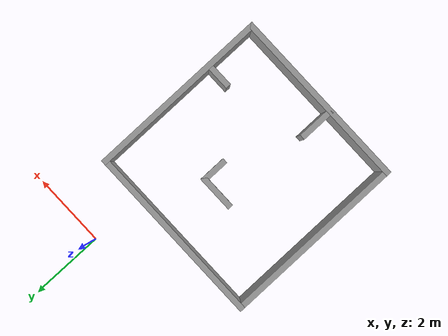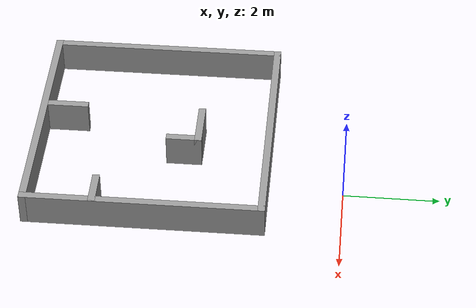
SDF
<?xml version='1.0'?>
<sdf version='1.7'>
  <model name='hexa_yard'>
    <pose>-1.223 -3.268 0 0 -0 0</pose>
    <link name='Wall_10'>
      <collision name='Wall_10_Collision'>
        <geometry>
          <box>
            <size>1 0.15 0.7</size>
          </box>
        </geometry>
        <pose>0 0 0.35 0 -0 0</pose>
      </collision>
      <visual name='Wall_10_Visual'>
        <pose>0 0 0.35 0 -0 0</pose>
        <geometry>
          <box>
            <size>1 0.15 0.7</size>
          </box>
        </geometry>
        <material>
          <script>
            <uri>file://media/materials/scripts/gazebo.material</uri>
            <name>Gazebo/Grey</name>
          </script>
          <ambient>1 1 1 1</ambient>
        </material>
        <meta>
          <layer>0</layer>
        </meta>
      </visual>
      <pose>0.028 0.187 0 0 -0 3.14159</pose>
    </link>
    <link name='Wall_15'>
      <collision name='Wall_15_Collision'>
        <geometry>
          <box>
            <size>1 0.15 0.7</size>
          </box>
        </geometry>
        <pose>0 0 0.35 0 -0 0</pose>
      </collision>
      <visual name='Wall_15_Visual'>
        <pose>0 0 0.35 0 -0 0</pose>
        <geometry>
          <box>
            <size>1 0.15 0.7</size>
          </box>
        </geometry>
        <material>
          <script>
            <uri>file://media/materials/scripts/gazebo.material</uri>
            <name>Gazebo/Grey</name>
          </script>
          <ambient>1 1 1 1</ambient>
        </material>
        <meta>
          <layer>0</layer>
        </meta>
      </visual>
      <pose>-0.408 -2.753 0 0 -0 1.5708</pose>
    </link>
    <link name='Wall_2'>
      <collision name='Wall_2_Collision'>
        <geometry>
          <box>
            <size>5 0.15 0.7</size>
          </box>
        </geometry>
        <pose>0 0 0.35 0 -0 0</pose>
      </collision>
      <visual name='Wall_2_Visual'>
        <pose>0 0 0.35 0 -0 0</pose>
        <geometry>
          <box>
            <size>5 0.15 0.7</size>
          </box>
        </geometry>
        <material>
          <script>
            <uri>file://media/materials/scripts/gazebo.material</uri>
            <name>Gazebo/Grey</name>
          </script>
          <ambient>1 1 1 1</ambient>
        </material>
        <meta>
          <layer>0</layer>
        </meta>
      </visual>
      <pose>-0 1.657 0 0 -0 0</pose>
    </link>
    <link name='Wall_21'>
      <collision name='Wall_21_Collision'>
        <geometry>
          <box>
            <size>0.75 0.15 0.7</size>
          </box>
        </geometry>
        <pose>0 0 0.35 0 -0 0</pose>
      </collision>
      <visual name='Wall_21_Visual'>
        <pose>0 0 0.35 0 -0 0</pose>
        <geometry>
          <box>
            <size>0.75 0.15 0.7</size>
          </box>
        </geometry>
        <material>
          <script>
            <uri>file://media/materials/scripts/gazebo.material</uri>
            <name>Gazebo/Grey</name>
          </script>
          <ambient>1 1 1 1</ambient>
        </material>
        <meta>
          <layer>0</layer>
        </meta>
      </visual>
      <pose>2.105 -1.779 0 0 -0 3.14159</pose>
    </link>
    <link name='Wall_23'>
      <collision name='Wall_23_Collision'>
        <geometry>
          <box>
            <size>0.75 0.15 0.7</size>
          </box>
        </geometry>
        <pose>0 0 0.35 0 -0 0</pose>
      </collision>
      <visual name='Wall_23_Visual'>
        <pose>0 0 0.35 0 -0 0</pose>
        <geometry>
          <box>
            <size>0.75 0.15 0.7</size>
          </box>
        </geometry>
        <material>
          <script>
            <uri>file://media/materials/scripts/gazebo.material</uri>
            <name>Gazebo/Grey</name>
          </script>
          <ambient>1 1 1 1</ambient>
        </material>
        <meta>
          <layer>0</layer>
        </meta>
      </visual>
      <pose>0.453 -0.113 0 0 -0 -1.5708</pose>
    </link>
    <link name='Wall_3'>
      <collision name='Wall_3_Collision'>
        <geometry>
          <box>
            <size>5 0.15 0.7</size>
          </box>
        </geometry>
        <pose>0 0 0.35 0 -0 0</pose>
      </collision>
      <visual name='Wall_3_Visual'>
        <pose>0 0 0.35 0 -0 0</pose>
        <geometry>
          <box>
            <size>5 0.15 0.7</size>
          </box>
        </geometry>
        <material>
          <script>
            <uri>file://media/materials/scripts/gazebo.material</uri>
            <name>Gazebo/Grey</name>
          </script>
          <ambient>1 1 1 1</ambient>
        </material>
        <meta>
          <layer>0</layer>
        </meta>
      </visual>
      <pose>2.425 -0.768 0 0 -0 -1.5708</pose>
    </link>
    <link name='Wall_4'>
      <collision name='Wall_4_Collision'>
        <geometry>
          <box>
            <size>5 0.15 0.7</size>
          </box>
        </geometry>
        <pose>0 0 0.35 0 -0 0</pose>
      </collision>
      <visual name='Wall_4_Visual'>
        <pose>0 0 0.35 0 -0 0</pose>
        <geometry>
          <box>
            <size>5 0.15 0.7</size>
          </box>
        </geometry>
        <material>
          <script>
            <uri>file://media/materials/scripts/gazebo.material</uri>
            <name>Gazebo/Grey</name>
          </script>
          <ambient>1 1 1 1</ambient>
        </material>
        <meta>
          <layer>0</layer>
        </meta>
      </visual>
      <pose>-0 -3.193 0 0 -0 3.14159</pose>
    </link>
    <link name='Wall_5'>
      <collision name='Wall_5_Collision'>
        <geometry>
          <box>
            <size>5 0.15 0.7</size>
          </box>
        </geometry>
        <pose>0 0 0.35 0 -0 0</pose>
      </collision>
      <visual name='Wall_5_Visual'>
        <pose>0 0 0.35 0 -0 0</pose>
        <geometry>
          <box>
            <size>5 0.15 0.7</size>
          </box>
        </geometry>
        <material>
          <script>
            <uri>file://media/materials/scripts/gazebo.material</uri>
            <name>Gazebo/Grey</name>
          </script>
          <ambient>1 1 1 1</ambient>
        </material>
        <meta>
          <layer>0</layer>
        </meta>
      </visual>
      <pose>-2.425 -0.768 0 0 -0 1.5708</pose>
    </link>
    <static>1</static>
  </model>
</sdf>
